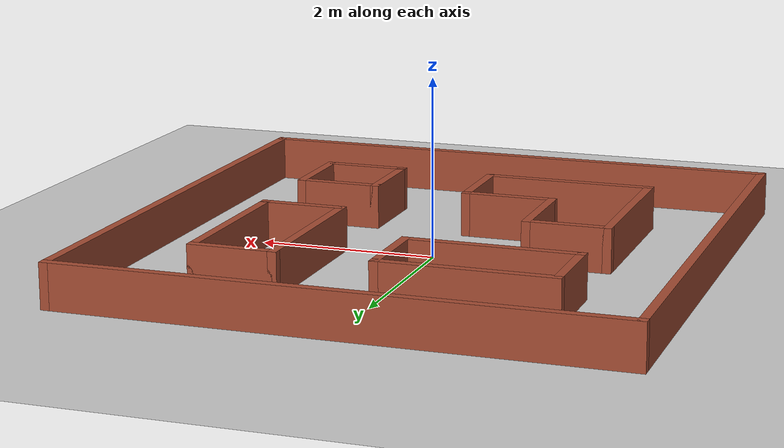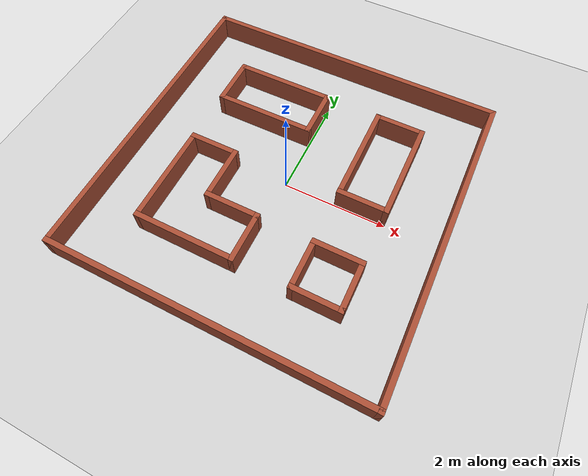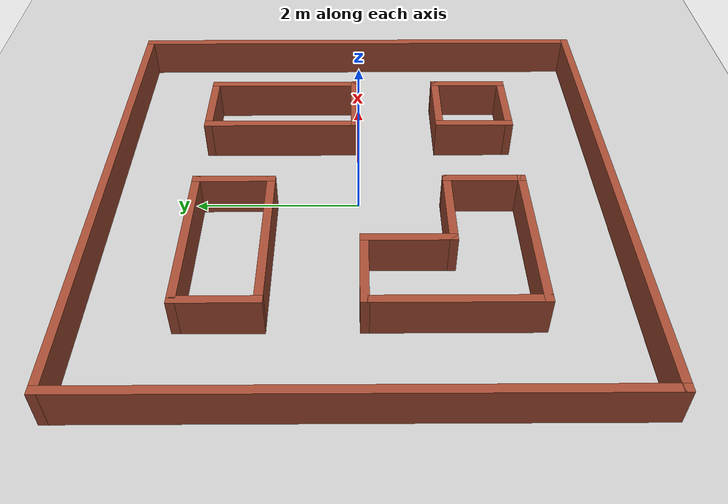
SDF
<sdf version="1.7">
 <world name="default">
  <light name="sun" type="directional">
   <pose>0 0 10 0 -0 0</pose>
   <diffuse>0.8 0.8 0.8 1</diffuse>
   <specular>0.2 0.2 0.2 1</specular>
   <attenuation>
    <range>1000</range>
    <constant>0.9</constant>
    <linear>0.01</linear>
    <quadratic>0.001</quadratic>
   </attenuation>
   <direction>-0.5 0.1 -0.9</direction>
   <spot><inner_angle>0</inner_angle><outer_angle>0</outer_angle><falloff>0</falloff></spot>
  </light>
  <model name="ground_plane">
   <static>1</static>
   <link name="link">
    <collision name="collision">
     <geometry><plane><normal>0 0 1</normal><size>100 100</size></plane></geometry>
     <surface>
      <contact><collide_bitmask>65535</collide_bitmask></contact>
      <friction><ode><mu>100</mu><mu2>50</mu2></ode></friction>
     </surface>
    </collision>
    <visual name="visual">
     <cast_shadows>0</cast_shadows>
     <geometry><plane><normal>0 0 1</normal><size>100 100</size></plane></geometry>
     <material>
      <script><uri>file://media/materials/scripts/gazebo.material</uri><name>Gazebo/Grey</name></script>
     </material>
    </visual>
   </link>
  </model>
  <gravity>0 0 -9.8</gravity>
  <magnetic_field>6e-06 2.3e-05 -4.2e-05</magnetic_field>
  <atmosphere type="adiabatic"/>
  <physics type="ode">
   <max_step_size>0.001</max_step_size>
   <real_time_factor>1</real_time_factor>
   <real_time_update_rate>1000</real_time_update_rate>
  </physics>
  <scene><ambient>0.4 0.4 0.4 1</ambient><background>0.7 0.7 0.7 1</background><shadows>1</shadows></scene>
  <spherical_coordinates>
   <surface_model>EARTH_WGS84</surface_model>
   <latitude_deg>0</latitude_deg>
   <longitude_deg>0</longitude_deg>
   <elevation>0</elevation>
   <heading_deg>0</heading_deg>
  </spherical_coordinates>
  <model name="single_map1">
   <link name="Wall_10">
    <collision name="Wall_10_Collision">
     <geometry><box><size>6.2 0.1 0.5</size></box></geometry>
     <pose>0 0 0.25 0 -0 0</pose>
    </collision>
    <visual name="Wall_10_Visual">
     <pose>0 0 0.25 0 -0 0</pose>
     <geometry><box><size>6.2 0.1 0.5</size></box></geometry>
     <material>
      <script><uri>file://media/materials/scripts/gazebo.material</uri><name>Gazebo/Bricks</name></script>
      <ambient>1 1 1 1</ambient>
     </material>
     <meta><layer>0</layer></meta>
    </visual>
    <pose>-3.05 0 0 0 -0 -1.5708</pose>
   </link>
   <link name="Wall_11">
    <collision name="Wall_11_Collision">
     <geometry><box><size>6.2 0.1 0.5</size></box></geometry>
     <pose>0 0 0.25 0 -0 0</pose>
    </collision>
    <visual name="Wall_11_Visual">
     <pose>0 0 0.25 0 -0 0</pose>
     <geometry><box><size>6.2 0.1 0.5</size></box></geometry>
     <material>
      <script><uri>file://media/materials/scripts/gazebo.material</uri><name>Gazebo/Bricks</name></script>
      <ambient>1 1 1 1</ambient>
     </material>
     <meta><layer>0</layer></meta>
    </visual>
    <pose>0 -3.05 0 0 -0 0</pose>
   </link>
   <link name="Wall_12">
    <collision name="Wall_12_Collision">
     <geometry><box><size>6.2 0.1 0.5</size></box></geometry>
     <pose>0 0 0.25 0 -0 0</pose>
    </collision>
    <visual name="Wall_12_Visual">
     <pose>0 0 0.25 0 -0 0</pose>
     <geometry><box><size>6.2 0.1 0.5</size></box></geometry>
     <material>
      <script><uri>file://media/materials/scripts/gazebo.material</uri><name>Gazebo/Bricks</name></script>
      <ambient>1 1 1 1</ambient>
     </material>
     <meta><layer>0</layer></meta>
    </visual>
    <pose>3.05 0 0 0 -0 1.5708</pose>
   </link>
   <link name="Wall_14">
    <collision name="Wall_14_Collision">
     <geometry><box><size>2 0.1 0.5</size></box></geometry>
     <pose>0 0 0.25 0 -0 0</pose>
    </collision>
    <visual name="Wall_14_Visual">
     <pose>0 0 0.25 0 -0 0</pose>
     <geometry><box><size>2 0.1 0.5</size></box></geometry>
     <material>
      <script><uri>file://media/materials/scripts/gazebo.material</uri><name>Gazebo/Bricks</name></script>
      <ambient>1 1 1 1</ambient>
     </material>
     <meta><layer>0</layer></meta>
    </visual>
    <pose>-1 1.95 0 0 -0 0</pose>
   </link>
   <link name="Wall_15">
    <collision name="Wall_15_Collision">
     <geometry><box><size>1 0.1 0.5</size></box></geometry>
     <pose>0 0 0.25 0 -0 0</pose>
    </collision>
    <visual name="Wall_15_Visual">
     <pose>0 0 0.25 0 -0 0</pose>
     <geometry><box><size>1 0.1 0.5</size></box></geometry>
     <material>
      <script><uri>file://media/materials/scripts/gazebo.material</uri><name>Gazebo/Bricks</name></script>
      <ambient>1 1 1 1</ambient>
     </material>
     <meta><layer>0</layer></meta>
    </visual>
    <pose>-0.05 1.5 0 0 -0 -1.5708</pose>
   </link>
   <link name="Wall_16">
    <collision name="Wall_16_Collision">
     <geometry><box><size>2 0.1 0.5</size></box></geometry>
     <pose>0 0 0.25 0 -0 0</pose>
    </collision>
    <visual name="Wall_16_Visual">
     <pose>0 0 0.25 0 -0 0</pose>
     <geometry><box><size>2 0.1 0.5</size></box></geometry>
     <material>
      <script><uri>file://media/materials/scripts/gazebo.material</uri><name>Gazebo/Bricks</name></script>
      <ambient>1 1 1 1</ambient>
     </material>
     <meta><layer>0</layer></meta>
    </visual>
    <pose>-1 1.05 0 0 -0 3.14159</pose>
   </link>
   <link name="Wall_18">
    <collision name="Wall_18_Collision">
     <geometry><box><size>2 0.1 0.5</size></box></geometry>
     <pose>0 0 0.25 0 -0 0</pose>
    </collision>
    <visual name="Wall_18_Visual">
     <pose>0 0 0.25 0 -0 0</pose>
     <geometry><box><size>2 0.1 0.5</size></box></geometry>
     <material>
      <script><uri>file://media/materials/scripts/gazebo.material</uri><name>Gazebo/Bricks</name></script>
      <ambient>1 1 1 1</ambient>
     </material>
     <meta><layer>0</layer></meta>
    </visual>
    <pose>1.05 1 0 0 -0 -1.5708</pose>
   </link>
   <link name="Wall_19">
    <collision name="Wall_19_Collision">
     <geometry><box><size>1 0.1 0.5</size></box></geometry>
     <pose>0 0 0.25 0 -0 0</pose>
    </collision>
    <visual name="Wall_19_Visual">
     <pose>0 0 0.25 0 -0 0</pose>
     <geometry><box><size>1 0.1 0.5</size></box></geometry>
     <material>
      <script><uri>file://media/materials/scripts/gazebo.material</uri><name>Gazebo/Bricks</name></script>
      <ambient>1 1 1 1</ambient>
     </material>
     <meta><layer>0</layer></meta>
    </visual>
    <pose>1.5 0.05 0 0 -0 0</pose>
   </link>
   <link name="Wall_20">
    <collision name="Wall_20_Collision">
     <geometry><box><size>2 0.1 0.5</size></box></geometry>
     <pose>0 0 0.25 0 -0 0</pose>
    </collision>
    <visual name="Wall_20_Visual">
     <pose>0 0 0.25 0 -0 0</pose>
     <geometry><box><size>2 0.1 0.5</size></box></geometry>
     <material>
      <script><uri>file://media/materials/scripts/gazebo.material</uri><name>Gazebo/Bricks</name></script>
      <ambient>1 1 1 1</ambient>
     </material>
     <meta><layer>0</layer></meta>
    </visual>
    <pose>1.95 1 0 0 -0 1.5708</pose>
   </link>
   <link name="Wall_22">
    <collision name="Wall_22_Collision">
     <geometry><box><size>2 0.1 0.5</size></box></geometry>
     <pose>0 0 0.25 0 -0 0</pose>
    </collision>
    <visual name="Wall_22_Visual">
     <pose>0 0 0.25 0 -0 0</pose>
     <geometry><box><size>2 0.1 0.5</size></box></geometry>
     <material>
      <script><uri>file://media/materials/scripts/gazebo.material</uri><name>Gazebo/Bricks</name></script>
      <ambient>1 1 1 1</ambient>
     </material>
     <meta><layer>0</layer></meta>
    </visual>
    <pose>-1.95 -1 0 0 -0 -1.5708</pose>
   </link>
   <link name="Wall_23">
    <collision name="Wall_23_Collision">
     <geometry><box><size>2 0.1 0.5</size></box></geometry>
     <pose>0 0 0.25 0 -0 0</pose>
    </collision>
    <visual name="Wall_23_Visual">
     <pose>0 0 0.25 0 -0 0</pose>
     <geometry><box><size>2 0.1 0.5</size></box></geometry>
     <material>
      <script><uri>file://media/materials/scripts/gazebo.material</uri><name>Gazebo/Bricks</name></script>
      <ambient>1 1 1 1</ambient>
     </material>
     <meta><layer>0</layer></meta>
    </visual>
    <pose>-1 -1.95 0 0 -0 0</pose>
   </link>
   <link name="Wall_24">
    <collision name="Wall_24_Collision">
     <geometry><box><size>1 0.1 0.5</size></box></geometry>
     <pose>0 0 0.25 0 -0 0</pose>
    </collision>
    <visual name="Wall_24_Visual">
     <pose>0 0 0.25 0 -0 0</pose>
     <geometry><box><size>1 0.1 0.5</size></box></geometry>
     <material>
      <script><uri>file://media/materials/scripts/gazebo.material</uri><name>Gazebo/Bricks</name></script>
      <ambient>1 1 1 1</ambient>
     </material>
     <meta><layer>0</layer></meta>
    </visual>
    <pose>-0.05 -1.5 0 0 -0 1.5708</pose>
   </link>
   <link name="Wall_25">
    <collision name="Wall_25_Collision">
     <geometry><box><size>1.1 0.1 0.5</size></box></geometry>
     <pose>0 0 0.25 0 -0 0</pose>
    </collision>
    <visual name="Wall_25_Visual">
     <pose>0 0 0.25 0 -0 0</pose>
     <geometry><box><size>1.1 0.1 0.5</size></box></geometry>
     <material>
      <script><uri>file://media/materials/scripts/gazebo.material</uri><name>Gazebo/Bricks</name></script>
      <ambient>1 1 1 1</ambient>
     </material>
     <meta><layer>0</layer></meta>
    </visual>
    <pose>-0.55 -1.05 0 0 -0 3.14159</pose>
   </link>
   <link name="Wall_26">
    <collision name="Wall_26_Collision">
     <geometry><box><size>1.1 0.1 0.5</size></box></geometry>
     <pose>0 0 0.25 0 -0 0</pose>
    </collision>
    <visual name="Wall_26_Visual">
     <pose>0 0 0.25 0 -0 0</pose>
     <geometry><box><size>1.1 0.1 0.5</size></box></geometry>
     <material>
      <script><uri>file://media/materials/scripts/gazebo.material</uri><name>Gazebo/Bricks</name></script>
      <ambient>1 1 1 1</ambient>
     </material>
     <meta><layer>0</layer></meta>
    </visual>
    <pose>-1.05 -0.55 0 0 -0 1.5708</pose>
   </link>
   <link name="Wall_27">
    <collision name="Wall_27_Collision">
     <geometry><box><size>1 0.1 0.5</size></box></geometry>
     <pose>0 0 0.25 0 -0 0</pose>
    </collision>
    <visual name="Wall_27_Visual">
     <pose>0 0 0.25 0 -0 0</pose>
     <geometry><box><size>1 0.1 0.5</size></box></geometry>
     <material>
      <script><uri>file://media/materials/scripts/gazebo.material</uri><name>Gazebo/Bricks</name></script>
      <ambient>1 1 1 1</ambient>
     </material>
     <meta><layer>0</layer></meta>
    </visual>
    <pose>-1.5 -0.05 0 0 -0 3.14159</pose>
   </link>
   <link name="Wall_30">
    <collision name="Wall_30_Collision">
     <geometry><box><size>1 0.1 0.5</size></box></geometry>
     <pose>0 0 0.25 0 -0 0</pose>
    </collision>
    <visual name="Wall_30_Visual">
     <pose>0 0 0.25 0 -0 0</pose>
     <geometry><box><size>1 0.1 0.5</size></box></geometry>
     <material>
      <script><uri>file://media/materials/scripts/gazebo.material</uri><name>Gazebo/Bricks</name></script>
      <ambient>1 1 1 1</ambient>
     </material>
     <meta><layer>0</layer></meta>
    </visual>
    <pose>1.95 -1.5 0 0 -0 -1.5708</pose>
   </link>
   <link name="Wall_31">
    <collision name="Wall_31_Collision">
     <geometry><box><size>1 0.1 0.5</size></box></geometry>
     <pose>0 0 0.25 0 -0 0</pose>
    </collision>
    <visual name="Wall_31_Visual">
     <pose>0 0 0.25 0 -0 0</pose>
     <geometry><box><size>1 0.1 0.5</size></box></geometry>
     <material>
      <script><uri>file://media/materials/scripts/gazebo.material</uri><name>Gazebo/Bricks</name></script>
      <ambient>1 1 1 1</ambient>
     </material>
     <meta><layer>0</layer></meta>
    </visual>
    <pose>1.5 -1.95 0 0 -0 3.14159</pose>
   </link>
   <link name="Wall_32">
    <collision name="Wall_32_Collision">
     <geometry><box><size>1 0.1 0.5</size></box></geometry>
     <pose>0 0 0.25 0 -0 0</pose>
    </collision>
    <visual name="Wall_32_Visual">
     <pose>0 0 0.25 0 -0 0</pose>
     <geometry><box><size>1 0.1 0.5</size></box></geometry>
     <material>
      <script><uri>file://media/materials/scripts/gazebo.material</uri><name>Gazebo/Bricks</name></script>
      <ambient>1 1 1 1</ambient>
     </material>
     <meta><layer>0</layer></meta>
    </visual>
    <pose>1.05 -1.5 0 0 -0 1.5708</pose>
   </link>
   <link name="Wall_40">
    <collision name="Wall_40_Collision">
     <geometry><box><size>1 0.1 0.5</size></box></geometry>
     <pose>0 0 0.25 0 -0 0</pose>
    </collision>
    <visual name="Wall_40_Visual">
     <pose>0 0 0.25 0 -0 0</pose>
     <geometry><box><size>1 0.1 0.5</size></box></geometry>
     <material>
      <script><uri>file://media/materials/scripts/gazebo.material</uri><name>Gazebo/Bricks</name></script>
      <ambient>1 1 1 1</ambient>
     </material>
     <meta><layer>0</layer></meta>
    </visual>
    <pose>1.5 -1.05 0 0 -0 3.14159</pose>
   </link>
   <link name="Wall_42">
    <collision name="Wall_42_Collision">
     <geometry><box><size>1 0.1 0.5</size></box></geometry>
     <pose>0 0 0.25 0 -0 0</pose>
    </collision>
    <visual name="Wall_42_Visual">
     <pose>0 0 0.25 0 -0 0</pose>
     <geometry><box><size>1 0.1 0.5</size></box></geometry>
     <material>
      <script><uri>file://media/materials/scripts/gazebo.material</uri><name>Gazebo/Bricks</name></script>
      <ambient>1 1 1 1</ambient>
     </material>
     <meta><layer>0</layer></meta>
    </visual>
    <pose>1.5 1.95 0 0 -0 0</pose>
   </link>
   <link name="Wall_44">
    <collision name="Wall_44_Collision">
     <geometry><box><size>1 0.1 0.5</size></box></geometry>
     <pose>0 0 0.25 0 -0 0</pose>
    </collision>
    <visual name="Wall_44_Visual">
     <pose>0 0 0.25 0 -0 0</pose>
     <geometry><box><size>1 0.1 0.5</size></box></geometry>
     <material>
      <script><uri>file://media/materials/scripts/gazebo.material</uri><name>Gazebo/Bricks</name></script>
      <ambient>1 1 1 1</ambient>
     </material>
     <meta><layer>0</layer></meta>
    </visual>
    <pose>-1.95 1.5 0 0 -0 -1.5708</pose>
   </link>
   <link name="Wall_9">
    <collision name="Wall_9_Collision">
     <geometry><box><size>6.2 0.1 0.5</size></box></geometry>
     <pose>0 0 0.25 0 -0 0</pose>
    </collision>
    <visual name="Wall_9_Visual">
     <pose>0 0 0.25 0 -0 0</pose>
     <geometry><box><size>6.2 0.1 0.5</size></box></geometry>
     <material>
      <script><uri>file://media/materials/scripts/gazebo.material</uri><name>Gazebo/Bricks</name></script>
      <ambient>1 1 1 1</ambient>
     </material>
     <meta><layer>0</layer></meta>
    </visual>
    <pose>0 3.05 0 0 -0 3.14159</pose>
   </link>
   <static>1</static>
  </model>
 </world>
</sdf>
